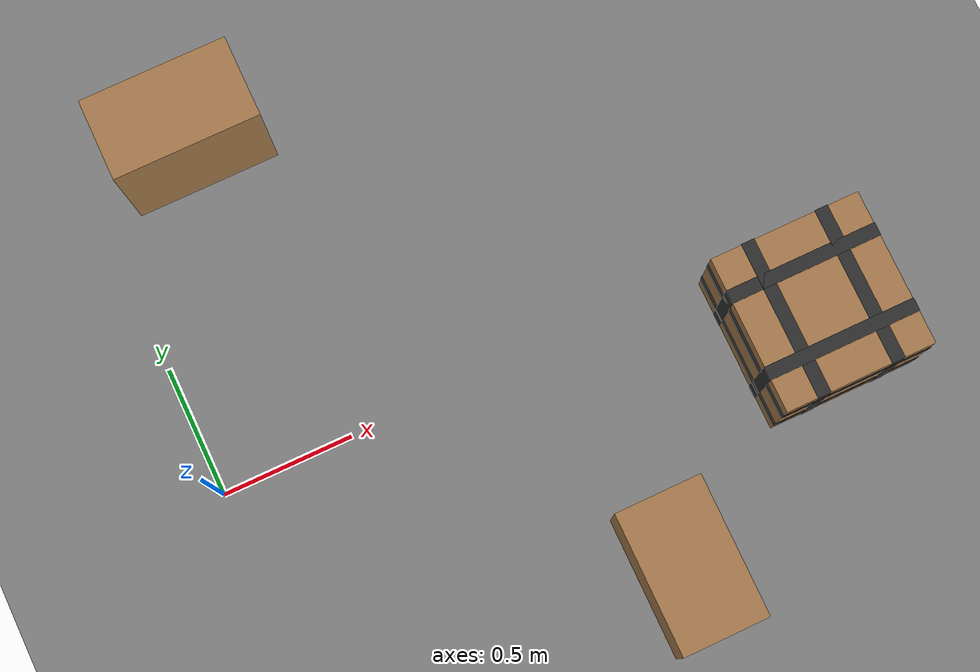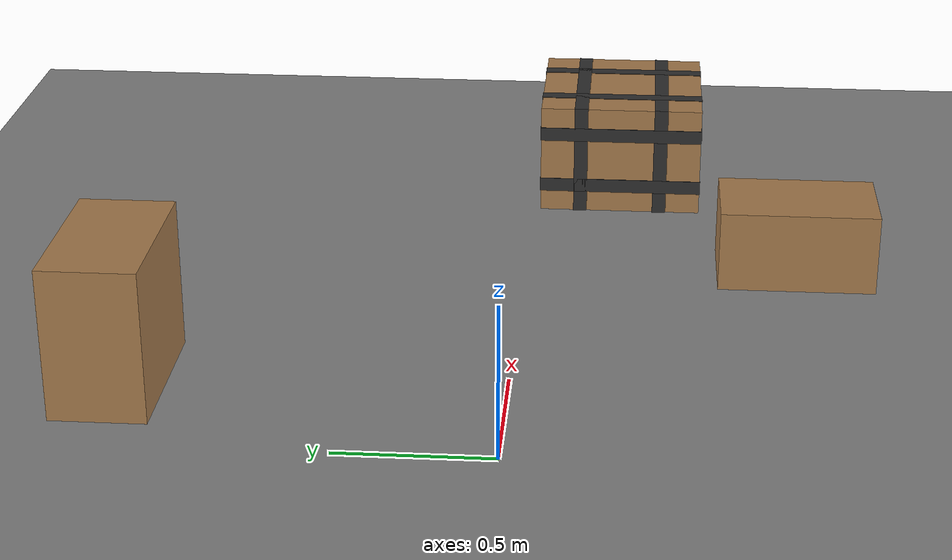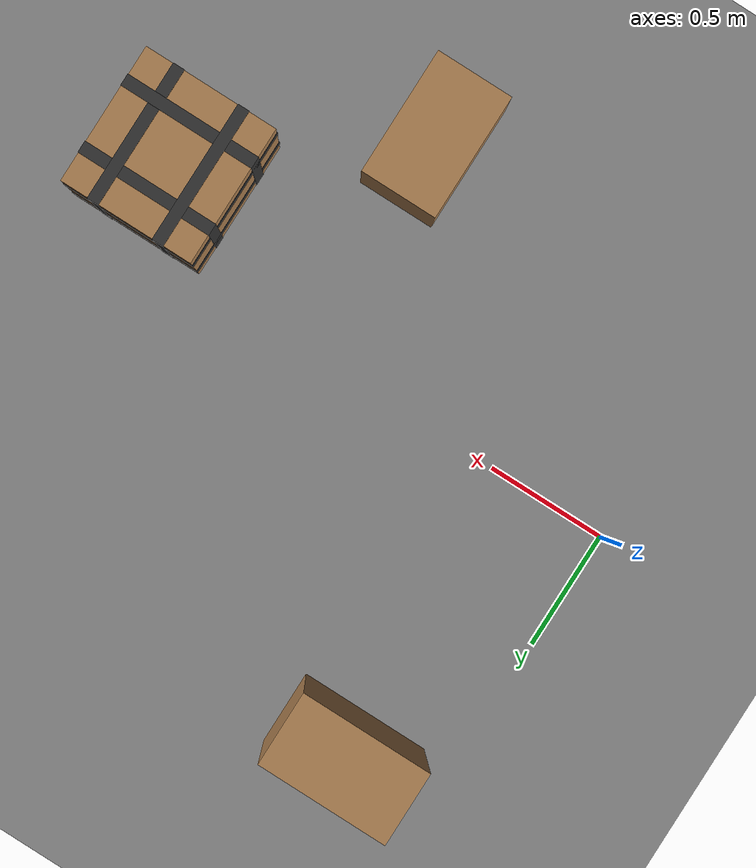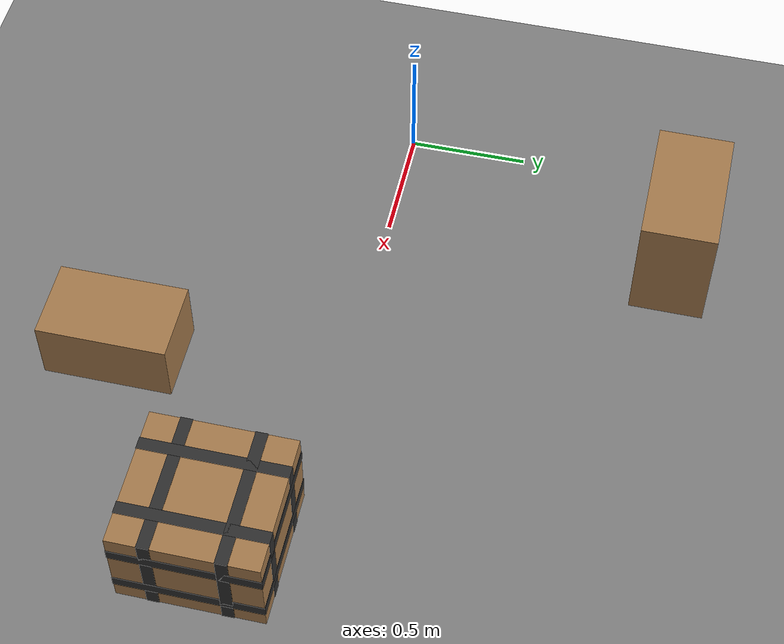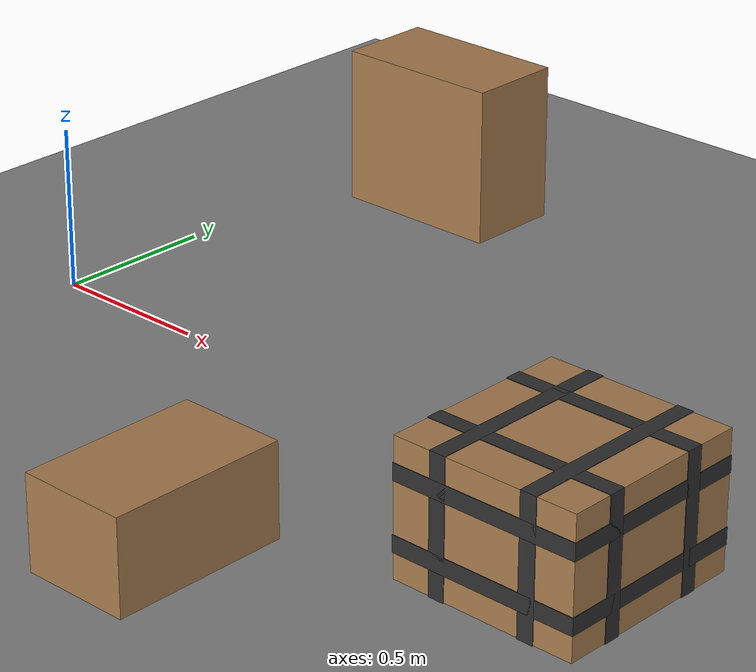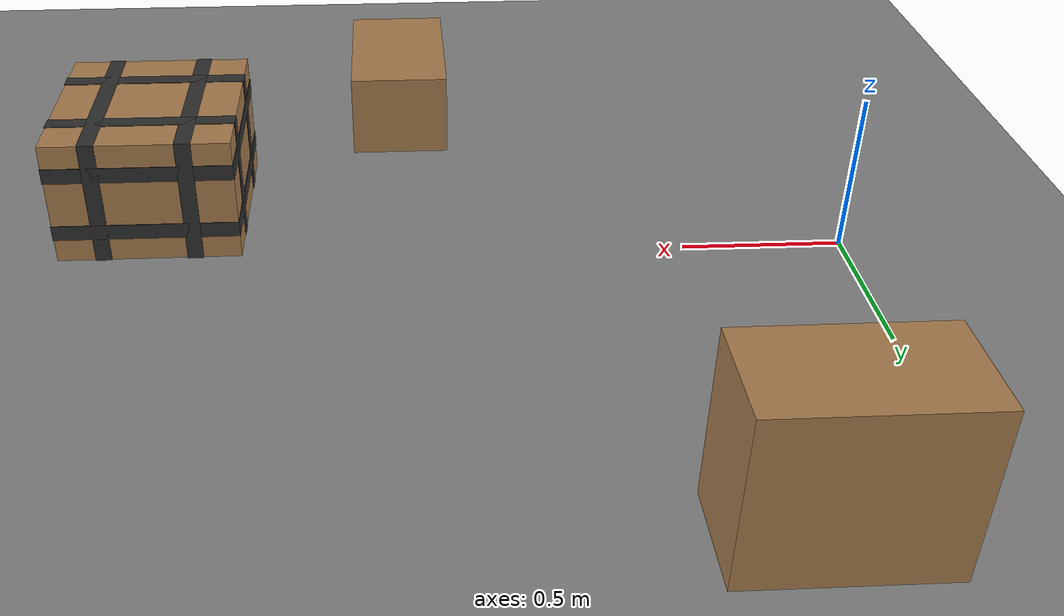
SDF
<sdf version="1.9">
 <world name="ecps295_lowbox_s12_monitor">
  <model name="ground_plane">
   <static>true</static>
   <link name="link">
    <collision name="collision">
     <geometry><plane><normal>0 0 1</normal><size>50 50</size></plane></geometry>
    </collision>
    <visual name="visual">
     <geometry><plane><normal>0 0 1</normal><size>50 50</size></plane></geometry>
     <material><ambient>0.5 0.5 0.5 1</ambient><diffuse>0.5 0.5 0.5 1</diffuse></material>
    </visual>
   </link>
  </model>
  <model name="lb1">
   <static>true</static>
   <pose>2.17 -0.32 0.199 0 0 0</pose>
   <link name="link">
    <collision name="c"><geometry><box><size>0.57 0.59 0.4</size></box></geometry></collision>
    <visual name="v">
     <geometry><box><size>0.57 0.59 0.4</size></box></geometry>
     <material><ambient>0.65 0.48 0.30 1</ambient><diffuse>0.65 0.48 0.30 1</diffuse></material>
    </visual>
    <visual name="tape_ring0">
     <pose>0.000 0.000 -0.100 0 0 0</pose>
     <geometry><box><size>0.574 0.594 0.050</size></box></geometry>
     <material><ambient>0.18 0.18 0.18 1</ambient><diffuse>0.18 0.18 0.18 1</diffuse></material>
    </visual>
    <visual name="tape_bx0">
     <pose>-0.142 0.000 0.000 0 0 0</pose>
     <geometry><box><size>0.050 0.594 0.404</size></box></geometry>
     <material><ambient>0.18 0.18 0.18 1</ambient><diffuse>0.18 0.18 0.18 1</diffuse></material>
    </visual>
    <visual name="tape_by0">
     <pose>0.000 -0.147 0.000 0 0 0</pose>
     <geometry><box><size>0.574 0.050 0.404</size></box></geometry>
     <material><ambient>0.18 0.18 0.18 1</ambient><diffuse>0.18 0.18 0.18 1</diffuse></material>
    </visual>
    <visual name="tape_ring1">
     <pose>0.000 0.000 0.100 0 0 0</pose>
     <geometry><box><size>0.574 0.594 0.050</size></box></geometry>
     <material><ambient>0.18 0.18 0.18 1</ambient><diffuse>0.18 0.18 0.18 1</diffuse></material>
    </visual>
    <visual name="tape_bx1">
     <pose>0.142 0.000 0.000 0 0 0</pose>
     <geometry><box><size>0.050 0.594 0.404</size></box></geometry>
     <material><ambient>0.18 0.18 0.18 1</ambient><diffuse>0.18 0.18 0.18 1</diffuse></material>
    </visual>
    <visual name="tape_by1">
     <pose>0.000 0.147 0.000 0 0 0</pose>
     <geometry><box><size>0.574 0.050 0.404</size></box></geometry>
     <material><ambient>0.18 0.18 0.18 1</ambient><diffuse>0.18 0.18 0.18 1</diffuse></material>
    </visual>
   </link>
  </model>
  <model name="lb4">
   <static>true</static>
   <pose>1.38 -0.94 0.142 0 0 0</pose>
   <link name="link">
    <collision name="c"><geometry><box><size>0.33 0.54 0.28</size></box></geometry></collision>
    <visual name="v">
     <geometry><box><size>0.33 0.54 0.28</size></box></geometry>
     <material><ambient>0.65 0.48 0.30 1</ambient><diffuse>0.65 0.48 0.30 1</diffuse></material>
    </visual>
   </link>
  </model>
  <model name="lb5">
   <static>true</static>
   <pose>0.41 1.23 0.249 0 0 0</pose>
   <link name="link">
    <collision name="c"><geometry><box><size>0.55 0.31 0.5</size></box></geometry></collision>
    <visual name="v">
     <geometry><box><size>0.55 0.31 0.5</size></box></geometry>
     <material><ambient>0.65 0.48 0.30 1</ambient><diffuse>0.65 0.48 0.30 1</diffuse></material>
    </visual>
   </link>
  </model>
 </world>
</sdf>
